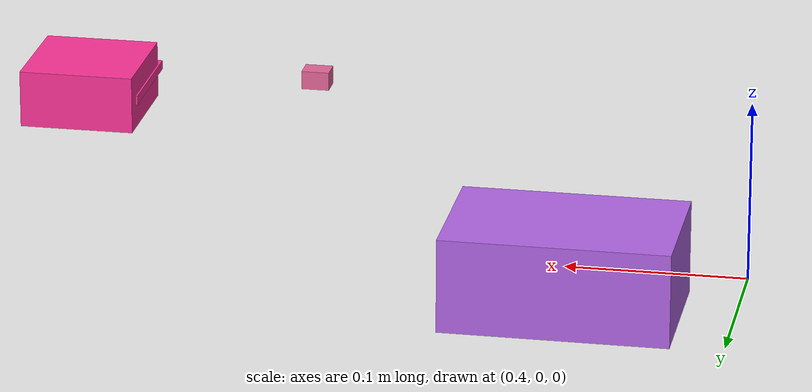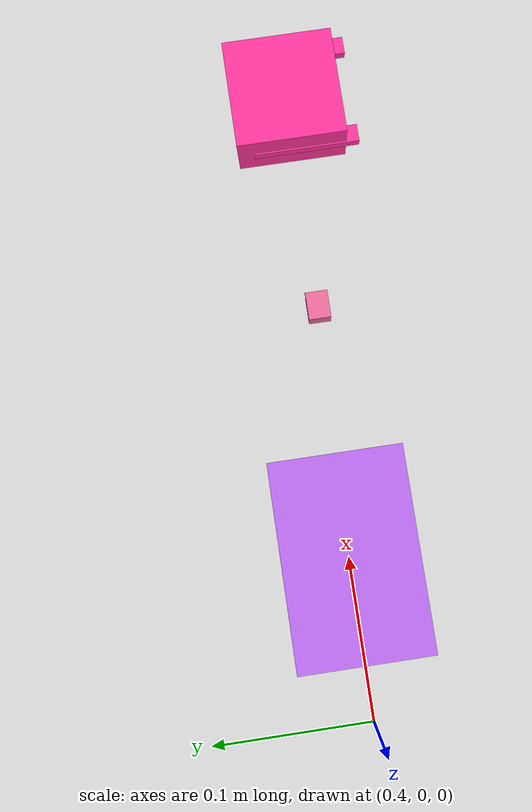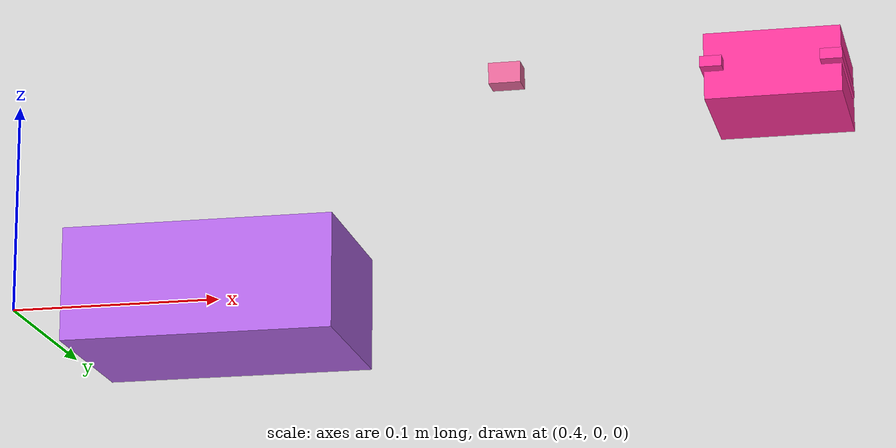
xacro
<?xml version="1.0"?>
<robot name="solara_claw" xmlns:xacro="http://ros.org/wiki/xacro">

<xacro:include filename="$(find solara_pkg)/description/claw_description/base_dummy.xacro"/>
<xacro:include filename="$(find solara_pkg)/description/claw_description/shaft.xacro"/>
<xacro:include filename="$(find solara_pkg)/description/claw_description/gripper.xacro"/>
<xacro:include filename="$(find solara_pkg)/description/claw_description/drill.xacro"/>

<xacro:shaft_motor parent="base_link">
    <origin xyz="0.2 0 0.1" rpy="0 0 0"/>
</xacro:shaft_motor>

<xacro:adaptive_gripper parent="claw_mount_link">
    <origin xyz="0.2 0 0.1" rpy="0 0 0"/>
  </xacro:adaptive_gripper>

<xacro:drill_assembly parent="drill_mount_link">
    <origin xyz="0.2 0 0.1" rpy="0 0 0"/>
  </xacro:drill_assembly>

</robot>

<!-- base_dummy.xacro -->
<robot xmlns:xacro="http://www.ros.org/wiki/xacro">
    <link name="world"/>
    <link name="base_link"/>

    <joint name="base_joint" type="fixed">
        <parent link="world"/>
        <child link="base_link"/>
        <origin xyz="0.5 0 0" rpy="0 0 0"/>
    </joint>

</robot>

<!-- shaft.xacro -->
<robot xmlns:xacro="http://www.ros.org/wiki/xacro">

    <!-- Chassis dimensions in meters -->
    <xacro:property name="shaft_length" value="0.127"/>  <!-- 5 inches -->
    <xacro:property name="shaft_width" value="0.08382"/>    <!-- 3.3 inches -->
    <xacro:property name="shaft_height" value="0.05334"/>  <!-- 2.1 inches -->
    <xacro:property name="shaft_mass" value="0.6"/>   <!-- 0.6 kg, adjust as needed -->

    <!-- Fixed mount point that connects to your arm's end link -->

    <xacro:macro name="shaft_motor" params="parent *origin">

    <link name="shaft_link">
        <!-- Visual representation -->
        <visual>
            <origin xyz="0 0 0" rpy="0 0 0"/>
            <geometry>
                <box size="${shaft_length} ${shaft_width} ${shaft_height}"/>
            </geometry>
            <material name="soft_purple">
                <color rgba="0.7 0.4 0.9 1.0"/>
            </material>
        </visual>

        <!-- Collision representation -->
        <collision>
            <origin xyz="0 0 0" rpy="0 0 0"/>
            <geometry>
                <box size="${shaft_length} ${shaft_width} ${shaft_height}"/>
            </geometry>
        </collision>

        <!-- Inertial properties -->
        <inertial>
            <origin xyz="0 0 0" rpy="0 0 0"/>
            <mass value="${shaft_mass}"/>
            <inertia
                ixx="${(1/12) * shaft_mass * (shaft_width*shaft_width + shaft_height*shaft_height)}"
                ixy="0.0"
                ixz="0.0"
                iyy="${(1/12) * shaft_mass * (shaft_length*shaft_length + shaft_height*shaft_height)}"
                iyz="0.0"
                izz="${(1/12) * shaft_mass * (shaft_length*shaft_length + shaft_width*shaft_width)}"/>
        </inertial>
    </link>

        <!-- Flip joint: rotates around X axis (shaft's long axis) -->
    <joint name="tool_flip_joint" type="revolute">
        <parent link="base_link"/>
        <child link="shaft_link"/>
        <origin xyz="0 0 0" rpy="0 0 0"/>
        <axis xyz="1 0 0"/>  <!-- rotate along shaft length -->
        <limit lower="0.0" upper="3.1416" effort="10.0" velocity="1.0"/>
    </joint>

    <!-- Claw side: positive X end of shaft -->
    <link name="claw_mount_link"/>
    <joint name="shaft_to_claw" type="fixed">
        <parent link="shaft_link"/>
        <child link="claw_mount_link"/>
        <origin xyz="${shaft_length/2} 0 0" rpy="0 0 0"/>
    </joint>

    <!-- Drill side: negative X end of shaft -->
    <link name="drill_mount_link"/>
    <joint name="shaft_to_drill" type="fixed">
        <parent link="shaft_link"/>
        <child link="drill_mount_link"/>
        <origin xyz="${-shaft_length/2} 0 0" rpy="0 0 0"/>
    </joint>

    <gazebo reference="shaft_link">
        <visual>
            <material>
                <ambient>0.7 0.4 0.9 1.0</ambient>
                <diffuse>0.7 0.4 0.9 1.0</diffuse>
                <specular>0.8 0.8 0.8 1.0</specular>
            </material>
        </visual>
    </gazebo>

    </xacro:macro>

</robot>

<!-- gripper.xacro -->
<robot xmlns:xacro="http://www.ros.org/wiki/xacro">

  <xacro:property name="joint_effort" value="56.0"/>
  <xacro:property name="joint_velocity" value="2.792527"/>
  <xacro:property name="joint_damping" value="0.0"/>
  <xacro:property name="joint_friction" value="0.0"/>

  <xacro:property name="gripper_link_mass" value="0.007"/>
  <xacro:property name="gripper_link_ixx" value="1e-6"/>
  <xacro:property name="gripper_link_iyy" value="1e-6"/>
  <xacro:property name="gripper_link_izz" value="1e-6"/>

  <xacro:macro name="gripper_link_inertial">
    <inertial>
      <origin xyz="0 0 0.0" rpy="0 0 0"/>
      <mass value="${gripper_link_mass}"/>
      <inertia
        ixx="${gripper_link_ixx}" ixy="0.0" ixz="0.0"
        iyy="${gripper_link_iyy}" iyz="0.0"
        izz="${gripper_link_izz}"/>
    </inertial>
  </xacro:macro>

  <xacro:macro name="adaptive_gripper" params="parent *origin">
  <!-- confirm parent link so i can attatch it to the side of the shaft motor  -->

    <link name="gripper_base">
      <inertial>
        <origin xyz="0 0 0.0" rpy="0 0 0"/>
        <mass value="0.07"/>
        <inertia
          ixx="0.000010725" ixy="0.0" ixz="0.0"
          iyy="0.000014392" iyz="0.0"
          izz="0.000018517"/>
      </inertial>
      <visual>
        <geometry>
            <box size="0.062 0.062 0.031"/>
        </geometry>
        <origin xyz="0.0 0.0 -0.012" rpy="0 0 0"/>
        <material name="hot_pink">
            <color rgba="1.0 0.2 0.6 1.0"/>
        </material>
      </visual>
      <collision>
        <geometry>
          <box size="0.062 0.062 0.0315"/>
        </geometry>
        <origin xyz="0.0 0.0 0.0" rpy="0 0 0"/>
      </collision>
    </link>

    <joint name="${parent}_to_gripper_base" type="fixed">
      <parent link="${parent}"/>
      <child link="gripper_base"/>
      <xacro:insert_block name="origin"/>
    </joint>

    <link name="gripper_left1">
      <xacro:gripper_link_inertial/>
      <visual>
        <geometry>
          <box size="0.01 0.06 0.005"/>
        </geometry>
        <origin xyz="0.039 -0.0133 -0.012" rpy="0 0 0"/>
        <material name="hot_pink">
            <color rgba="1.0 0.2 0.6 1.0"/>
        </material>
      </visual>
      <collision>
        <geometry>
          <box size="0.01 0.06 0.005"/>
        </geometry>
        <origin xyz="0.013 0.042 -0.010" rpy="0 0 0"/>
      </collision>
    </link>

    <link name="gripper_right1">
      <xacro:gripper_link_inertial/>
      <visual>
        <geometry>
          <box size="0.01 0.06 0.005"/>
        </geometry>
        <origin xyz="-0.039 -0.0133 -0.012" rpy="0 0 0"/>
        <material name="hot_pink">
            <color rgba="1.0 0.2 0.6 1.0"/>
        </material>
      </visual>
      <collision>
        <geometry>
          <box size="0.01 0.06 0.005"/>
        </geometry>
        <origin xyz="-0.013 0.042 -0.010" rpy="0 0 0"/>
      </collision>
    </link>

    <joint name="gripper_controller" type="revolute">
        <axis xyz="0 0 1"/>
        <limit effort="${joint_effort}" lower="-0.7" upper="0.15" velocity="${joint_velocity}"/>
        <parent link="gripper_base"/>
        <child link="gripper_left1"/>
        <origin xyz="-0.012 0.005 0" rpy="0 0 0"/>
        <dynamics damping="${joint_damping}" friction="${joint_friction}"/>
    </joint>

    <joint name="gripper_base_to_gripper_right1" type="revolute">
      <axis xyz="0 0 1"/>
      <limit effort="${joint_effort}" lower="-0.7" upper="0.15" velocity="${joint_velocity}"/>
      <parent link="gripper_base"/>
      <child link="gripper_right1"/>
      <origin xyz="0.012 0.005 0" rpy="0 0 0"/>
      <mimic joint="gripper_controller" multiplier="-1.0" offset="0"/>
      <dynamics damping="${joint_damping}" friction="${joint_friction}"/>
    </joint>

    <gazebo reference="gripper_base">
      <visual>
        <material>
          <ambient>1.0 0.2 0.6 1.0</ambient>
          <diffuse>1.0 0.2 0.6 1.0</diffuse>
          <specular>1 1 1 1</specular>
        </material>
      </visual>
    </gazebo>

  </xacro:macro>
</robot>

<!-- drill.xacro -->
<robot xmlns:xacro="http://www.ros.org/wiki/xacro">

    <xacro:property name="drill_motor_length" value="0.015"/>
    <xacro:property name="drill_motor_width" value="0.012"/>
    <xacro:property name="drill_motor_height" value="0.010"/>
    <xacro:property name="drill_motor_mass" value = "0.009"/>

    <xacro:property name="drill_spin_length" value= "0.0025"/>
    <xacro:property name="drill_spin_diameter" value="0.0092"/>

    <!-- Fixed mount point that connects to your arm's end link -->
    <xacro:macro name="drill_assembly"  params="parent *origin">

     <joint name="${parent}_to_drill_motor" type="fixed">
        <parent link="${parent}"/>
        <child link="drill_motor_link"/>
        <xacro:insert_block name="origin"/>
    </joint>

    <link name="drill_motor_link">
        <!-- Visual representation -->
        <visual>
            <origin xyz="0 0 0" rpy="0 0 0"/>
            <geometry>
                <box size="${drill_motor_length} ${drill_motor_width} ${drill_motor_height}"/>
            </geometry>
            <material name="blush">
                <color rgba="0.9 0.4 0.6 1.0"/>
            </material>
        </visual>

        <!-- Collision representation -->
        <collision>
            <origin xyz="0 0 0" rpy="0 0 0"/>
            <geometry>
                <cylinder radius="${drill_motor_width/2}" length="${drill_motor_height}"/>
            </geometry>
        </collision>

        <!-- Inertial properties -->
        <inertial>
            <origin xyz="0 0 0" rpy="0 0 0"/>
            <mass value="${drill_motor_mass}"/>
            <inertia
                ixx="${(1/12) * drill_motor_mass * (drill_motor_width*drill_motor_width + drill_motor_height*drill_motor_height)}"
                ixy="0.0"
                ixz="0.0"
                iyy="${(1/12) * drill_motor_mass * (drill_motor_length*drill_motor_length + drill_motor_height*drill_motor_height)}"
                iyz="0.0"
                izz="${(1/12) * drill_motor_mass * (drill_motor_length*drill_motor_length + drill_motor_width*drill_motor_width)}"/>
        </inertial>
    </link>

    <joint name="drill_motor_to_drill_spin" type="continuous">
        <parent link="drill_motor_link"/>
        <child link="drill_spin_link"/>
        <axis xyz="0 0 1"/>  <!-- rotate around Z axis -->
        <origin xyz="0 0 0" rpy="0 0 0"/>
    </joint>

     <link name="drill_spin_link">
        <!-- Visual representation -->
        <visual>
            <origin xyz="0 0 0" rpy="0 0 0"/>
            <geometry>
                <cylinder radius="${drill_spin_diameter/2}" length="${drill_spin_length}"/>
            </geometry>
            <material name="chassis_blue">
                <color rgba="0.2 0.4 0.8 1.0"/>
            </material>
        </visual>

        <!-- Collision representation -->
        <collision>
            <origin xyz="0 0 0" rpy="0 0 0"/>
            <geometry>
                <cylinder radius="${drill_spin_diameter/2}" length="${drill_spin_length}"/>
            </geometry>
        </collision>

        <!-- Inertial properties -->
        <inertial>
            <origin xyz="0 0 0" rpy="0 0 0"/>
            <mass value="${drill_motor_mass}"/>
            <inertia
                ixx="${(1/12) * drill_motor_mass * (3 * drill_spin_diameter/2 * drill_spin_diameter/2 + drill_spin_length * drill_spin_length)}"
                ixy="0.0"
                ixz="0.0"
                iyy="${(1/12) * drill_motor_mass * (3 * drill_spin_diameter/2 * drill_spin_diameter/2 + drill_spin_length * drill_spin_length)}"
                iyz="0.0"
                izz="${(1/2) * drill_motor_mass * (drill_spin_diameter/2 * drill_spin_diameter/2)}"/>
        </inertial>
    </link>

 <gazebo reference="drill_motor_link">
        <visual>
            <material>
                <ambient>0.9 0.4 0.6 1.0</ambient>
                <diffuse>0.9 0.4 0.6 1.0</diffuse>
                <specular>1.0 0.2 0.6 1.0</specular>
            </material>
        </visual>
    </gazebo>

    </xacro:macro>
</robot>
